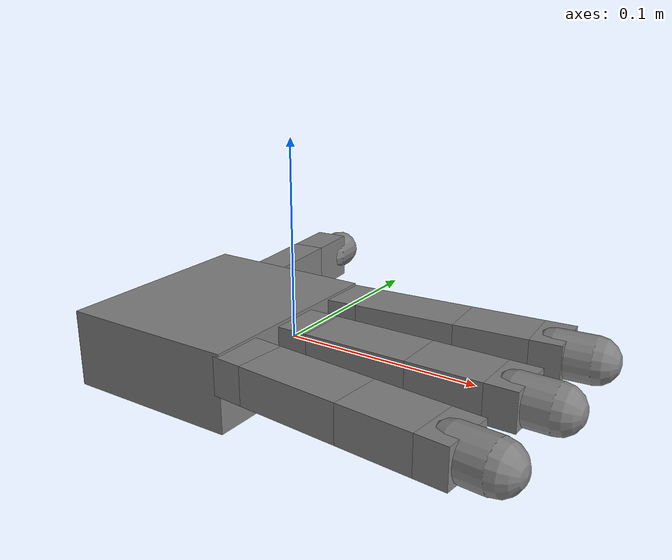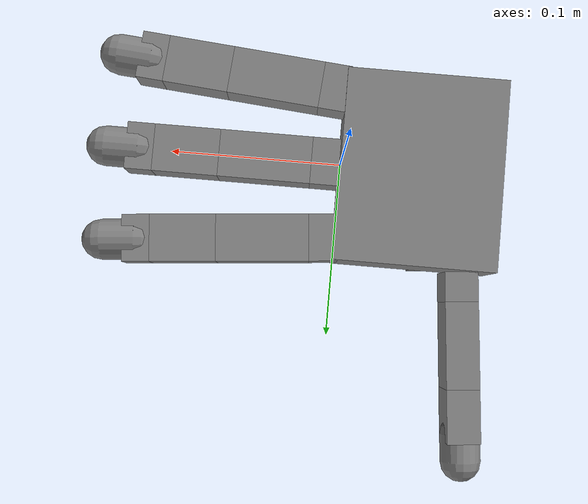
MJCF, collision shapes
<mujoco model="allegro_left">
  <compiler angle="radian" meshdir="assets" autolimits="true"/>

  <option cone="elliptic" impratio="10"/>

  <default>
    <default class="allegro_left">
      <joint axis="0 1 0" damping=".1"/>
      <position kp="1"/>
      <geom density="800"/>

      <default class="visual">
        <geom type="mesh" contype="0" conaffinity="0" group="2" material="black"/>
        <default class="palm_visual">
          <geom mesh="base_link"/>
        </default>
        <default class="base_visual">
          <geom mesh="link_0.0"/>
        </default>
        <default class="proximal_visual">
          <geom mesh="link_1.0"/>
        </default>
        <default class="medial_visual">
          <geom mesh="link_2.0"/>
        </default>
        <default class="distal_visual">
          <geom mesh="link_3.0"/>
        </default>
        <default class="fingertip_visual">
          <geom pos="0 0 0.0267" material="white" mesh="link_3.0_tip"/>
        </default>
        <default class="thumbtip_visual">
          <geom pos="0 0 0.0423" material="white" mesh="link_15.0_tip"/>
        </default>
      </default>

      <default class="collision">
        <geom group="3" type="box" mass="0"/>
        <default class="palm_collision">
          <geom size="0.0204 0.0565 0.0475" pos="-0.0093 0 -0.0475"/>
        </default>
        <default class="base_collision">
          <geom size="0.0098 0.01375 0.0082" pos="0 0 0.0082"/>
          <default class="thumb_base_collision">
            <geom size="0.0179 0.017 0.02275" pos="-0.0179 0.009 0.0145"/>
          </default>
        </default>
        <default class="proximal_collision">
          <geom size="0.0098 0.01375 0.027" pos="0 0 0.027"/>
          <default class="thumb_proximal_collision">
            <geom size="0.0098 0.01375 0.00885" pos="0 0 0.00885"/>
          </default>
        </default>
        <default class="medial_collision">
          <geom size="0.0098 0.01375 0.0192" pos="0 0 0.0192"/>
          <default class="thumb_medial_collision">
            <geom size="0.0098 0.01375 0.0257" pos="0 0 0.0257"/>
          </default>
        </default>
        <default class="distal_collision">
          <geom size="0.0098 0.01375 0.008" pos="0 0 0.008"/>
          <default class="thumb_distal_collision">
            <geom size="0.0098 0.01375 0.0157" pos="0 0 0.0157"/>
          </default>
        </default>
        <default class="fingertip_collision">
          <geom type="capsule" size="0.012 0.01" pos="0 0 0.019"/>
          <default class="thumbtip_collision">
            <geom type="capsule" size="0.012 0.008" pos="0 0 0.035"/>
          </default>
        </default>
      </default>

      <default class="base">
        <joint axis="0 0 1" range="-0.47 0.47"/>
        <position ctrlrange="-0.47 0.47"/>
      </default>
      <default class="proximal">
        <joint range="-0.196 1.61"/>
        <position ctrlrange="-0.196 1.61"/>
      </default>
      <default class="medial">
        <joint range="-0.174 1.709"/>
        <position ctrlrange="-0.174 1.709"/>
      </default>
      <default class="distal">
        <joint range="-0.227 1.618"/>
        <position ctrlrange="-0.227 1.618"/>
      </default>
      <default class="thumb_base">
        <joint axis="1 0 0" range="0.263 1.396"/>
        <position ctrlrange="0.263 1.396"/>
      </default>
      <default class="thumb_proximal">
        <joint axis="0 0 -1" range="-0.105 1.163"/>
        <position ctrlrange="-0.105 1.163"/>
      </default>
      <default class="thumb_medial">
        <joint range="-0.189 1.644"/>
        <position ctrlrange="-0.189 1.644"/>
      </default>
      <default class="thumb_distal">
        <joint range="-0.162 1.719"/>
        <position ctrlrange="-0.162 1.719"/>
      </default>
      <default class="base_slide">
        <joint type="slide" axis="1 0 0" range="-0.50 0.50" damping="3.0" armature="0.02"/>
        <position kp="300.0" kv="40.0" ctrlrange="-0.50 0.50" forcerange="-200 200"/>
      </default>
      <default class="base_hinge">
        <joint type="hinge" axis="1 0 0" range="-0.7853 0.7853" damping="0.5" armature="0.01"/>
        <position kp="60.0" kv="8.0" ctrlrange="-0.7853 0.7853" forcerange="-80 80"/>
      </default>
    </default>
  </default>

  <asset>
    <material name="black" rgba="0.2 0.2 0.2 1"/>
    <material name="white" rgba="0.9 0.9 0.9 1"/>

    <mesh file="base_link_left.stl"/>
    <mesh file="link_0.0.stl"/>
    <mesh file="link_1.0.stl"/>
    <mesh file="link_2.0.stl"/>
    <mesh file="link_3.0.stl"/>
    <mesh file="link_3.0_tip.stl"/>
    <mesh file="link_12.0_left.stl"/>
    <mesh file="link_13.0.stl"/>
    <mesh file="link_14.0.stl"/>
    <mesh file="link_15.0.stl"/>
    <mesh file="link_15.0_tip.stl"/>
  </asset>

  <worldbody>
    <body name="palm" quat="0 1 0 1" childclass="allegro_left">
      <joint name="base_x" class="base_slide" axis="1 0 0"/>
      <joint name="base_y" class="base_slide" axis="0 1 0"/>
      <joint name="base_z" class="base_slide" axis="0 0 1"/>
      <joint name="base_roll" class="base_hinge" axis="1 0 0"/>
      <joint name="base_pitch" class="base_hinge" axis="0 1 0"/>
      <joint name="base_yaw" class="base_hinge" axis="0 0 1"/>

      <geom quat="1 -1 0 0" class="palm_visual" mesh="base_link_left"/>
      <geom class="palm_collision"/>
      <!-- Ring finger -->
      <body name="rf_base" pos="0 0.0435 -0.001542" quat="0.999048 -0.0436194 0 0">
        <joint name="rfj0" class="base"/>
        <geom class="base_visual"/>
        <geom class="base_collision"/>
        <body name="rf_proximal" pos="0 0 0.0164">
          <joint name="rfj1" class="proximal"/>
          <geom class="proximal_visual"/>
          <geom class="proximal_collision"/>
          <body name="rf_medial" pos="0 0 0.054">
            <joint name="rfj2" class="medial"/>
            <geom class="medial_visual"/>
            <geom class="medial_collision"/>
            <body name="rf_distal" pos="0 0 0.0384">
              <joint name="rfj3" class="distal"/>
              <geom class="distal_visual"/>
              <geom class="distal_collision"/>
              <body name="rf_tip">
                <geom class="fingertip_visual"/>
                <geom class="fingertip_collision"/>
                <!-- Virtual tip head for visualization/contact -->
                <body name="rf_tip_head" pos="0 0 0.035">
                  <geom type="sphere" size="0.005" contype="0" conaffinity="0" group="4" rgba="1 0 0 0.5"/>
                </body>
              </body>
            </body>
          </body>
        </body>
      </body>
      <!-- Middle finger -->
      <body name="mf_base" pos="0 0 0.0007">
        <joint name="mfj0" class="base"/>
        <geom class="base_visual"/>
        <geom class="base_collision"/>
        <body name="mf_proximal" pos="0 0 0.0164">
          <joint name="mfj1" class="proximal"/>
          <geom class="proximal_visual"/>
          <geom class="proximal_collision"/>
          <body name="mf_medial" pos="0 0 0.054">
            <joint name="mfj2" class="medial"/>
            <geom class="medial_visual"/>
            <geom class="medial_collision"/>
            <body name="mf_distal" pos="0 0 0.0384">
              <joint name="mfj3" class="distal"/>
              <geom class="distal_visual"/>
              <geom class="distal_collision"/>
              <body name="mf_tip">
                <geom class="fingertip_visual"/>
                <geom class="fingertip_collision"/>
                <!-- Virtual tip head for visualization/contact -->
                <body name="mf_tip_head" pos="0 0 0.035">
                  <geom type="sphere" size="0.005" contype="0" conaffinity="0" group="4" rgba="0 1 0 0.5"/>
                </body>
              </body>
            </body>
          </body>
        </body>
      </body>
      <!-- First finger -->
      <body name="ff_base" pos="0 -0.0435 -0.001542" quat="0.999048 0.0436194 0 0">
        <joint name="ffj0" class="base"/>
        <geom class="base_visual"/>
        <geom class="base_collision"/>
        <body name="ff_proximal" pos="0 0 0.0164">
          <joint name="ffj1" class="proximal"/>
          <geom class="proximal_visual"/>
          <geom class="proximal_collision"/>
          <body name="ff_medial" pos="0 0 0.054">
            <joint name="ffj2" class="medial"/>
            <geom class="medial_visual"/>
            <geom class="medial_collision"/>
            <body name="ff_distal" pos="0 0 0.0384">
              <joint name="ffj3" class="distal"/>
              <geom class="distal_visual"/>
              <geom class="distal_collision"/>
              <body name="ff_tip">
                <geom class="fingertip_visual"/>
                <geom class="fingertip_collision"/>
                <!-- Virtual tip head for visualization/contact -->
                <body name="ff_tip_head" pos="0 0 0.035">
                  <geom type="sphere" size="0.005" contype="0" conaffinity="0" group="4" rgba="0 0 1 0.5"/>
                </body>
              </body>
            </body>
          </body>
        </body>
      </body>
      <!-- Thumb -->
      <body name="th_base" pos="-0.0182 -0.019333 -0.045987" quat="0.477714 0.521334 -0.521334 0.477714">
        <joint name="thj0" class="thumb_base"/>
        <geom quat="0 1 0 0" class="visual" mesh="link_12.0_left"/>
        <geom class="thumb_base_collision"/>
        <body name="th_proximal" pos="-0.027 -0.005 0.0399">
          <joint name="thj1" class="thumb_proximal"/>
          <geom class="visual" mesh="link_13.0"/>
          <geom class="thumb_proximal_collision"/>
          <body name="th_medial" pos="0 0 0.0177">
            <joint name="thj2" class="thumb_medial"/>
            <geom class="visual" mesh="link_14.0"/>
            <geom class="thumb_medial_collision"/>
            <body name="th_distal" pos="0 0 0.0514">
              <joint name="thj3" class="thumb_distal"/>
              <geom class="visual" mesh="link_15.0"/>
              <geom class="thumb_distal_collision"/>
              <body name="th_tip">
                <geom class="thumbtip_visual"/>
                <geom class="thumbtip_collision"/>
                <!-- Virtual tip head for visualization/contact -->
                <body name="th_tip_head" pos="0 0 0.050">
                  <geom type="sphere" size="0.005" contype="0" conaffinity="0" group="4" rgba="1 1 0 0.5"/>
                </body>
              </body>
            </body>
          </body>
        </body>
      </body>
    </body>
  </worldbody>

  <contact>
    <exclude body1="palm" body2="ff_base"/>
    <exclude body1="palm" body2="mf_base"/>
    <exclude body1="palm" body2="rf_base"/>
    <exclude body1="palm" body2="th_base"/>
    <exclude body1="palm" body2="th_proximal"/>
  </contact>

  <actuator>
    <position name="base_x_act" joint="base_x" class="base_slide"/>
    <position name="base_y_act" joint="base_y" class="base_slide"/>
    <position name="base_z_act" joint="base_z" class="base_slide"/>
    <position name="base_roll_act" joint="base_roll" class="base_hinge"/>
    <position name="base_pitch_act" joint="base_pitch" class="base_hinge"/>
    <position name="base_yaw_act" joint="base_yaw" class="base_hinge"/>
  </actuator>
</mujoco>
